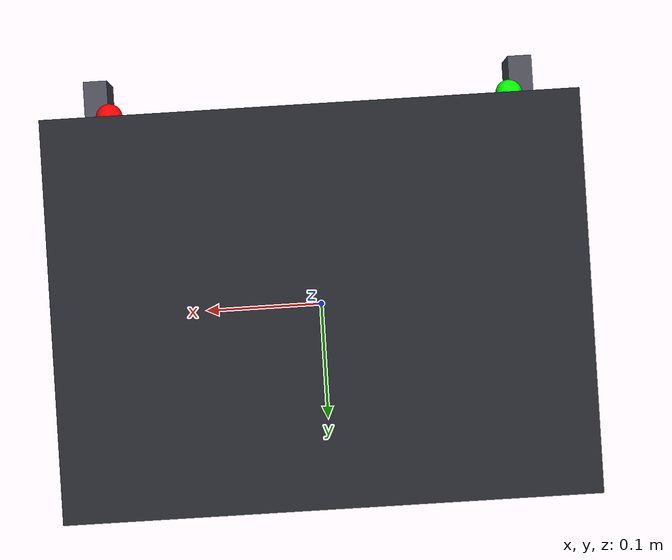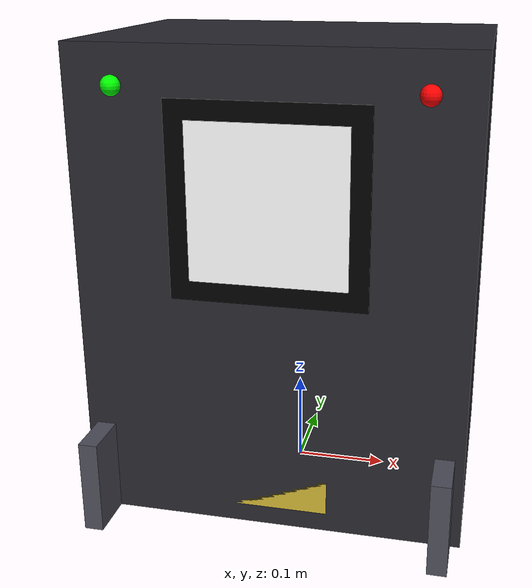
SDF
<?xml version="1.0" ?>
<!-- SPDX-License-Identifier: Apache-2.0 -->
<sdf version="1.9">
  <model name="charging_dock">
    <static>true</static>

    <!-- Dock body -->
    <link name="dock_body">
      <pose>0 0 0.25 0 0 0</pose>
      <collision name="collision">
        <geometry><box><size>0.4 0.3 0.5</size></box></geometry>
      </collision>
      <visual name="body_visual">
        <geometry><box><size>0.4 0.3 0.5</size></box></geometry>
        <material>
          <ambient>0.15 0.15 0.18 1</ambient>
          <diffuse>0.15 0.15 0.18 1</diffuse>
          <specular>0.3 0.3 0.3 1</specular>
        </material>
      </visual>
    </link>

    <!-- AprilTag marker face (front-facing, z=0.35m height) -->
    <link name="apriltag_marker">
      <pose>0 -0.151 0.35 0 0 0</pose>
      <visual name="tag_visual">
        <geometry><box><size>0.16 0.001 0.16</size></box></geometry>
        <material>
          <ambient>1.0 1.0 1.0 1</ambient>
          <diffuse>1.0 1.0 1.0 1</diffuse>
        </material>
      </visual>
    </link>

    <!-- AprilTag black border (slightly larger) -->
    <link name="apriltag_border">
      <pose>0 -0.1505 0.35 0 0 0</pose>
      <visual name="border_visual">
        <geometry><box><size>0.20 0.001 0.20</size></box></geometry>
        <material>
          <ambient>0.0 0.0 0.0 1</ambient>
          <diffuse>0.0 0.0 0.0 1</diffuse>
        </material>
      </visual>
    </link>

    <!-- Pogo pin contact plate (bottom front) -->
    <link name="contact_plate">
      <pose>0 -0.14 0.06 0 0 0</pose>
      <collision name="collision">
        <geometry><box><size>0.12 0.02 0.08</size></box></geometry>
      </collision>
      <visual name="contact_visual">
        <geometry><box><size>0.12 0.02 0.08</size></box></geometry>
        <material>
          <ambient>0.8 0.7 0.2 1</ambient>
          <diffuse>0.8 0.7 0.2 1</diffuse>
          <specular>0.9 0.9 0.5 1</specular>
        </material>
      </visual>
    </link>

    <!-- LED indicator left (green) -->
    <link name="led_green">
      <pose>-0.15 -0.151 0.46 0 0 0</pose>
      <visual name="led_visual">
        <geometry><sphere><radius>0.01</radius></sphere></geometry>
        <material>
          <ambient>0.0 0.8 0.0 1</ambient>
          <diffuse>0.0 1.0 0.0 1</diffuse>
          <emissive>0.0 0.6 0.0 1</emissive>
        </material>
      </visual>
    </link>

    <!-- LED indicator right (red) -->
    <link name="led_red">
      <pose>0.15 -0.151 0.46 0 0 0</pose>
      <visual name="led_visual">
        <geometry><sphere><radius>0.01</radius></sphere></geometry>
        <material>
          <ambient>0.8 0.0 0.0 1</ambient>
          <diffuse>1.0 0.0 0.0 1</diffuse>
          <emissive>0.6 0.0 0.0 1</emissive>
        </material>
      </visual>
    </link>

    <!-- Guide rails for alignment -->
    <link name="guide_left">
      <pose>-0.18 -0.10 0.05 0 0 0</pose>
      <collision name="collision">
        <geometry><box><size>0.02 0.20 0.10</size></box></geometry>
      </collision>
      <visual name="visual">
        <geometry><box><size>0.02 0.20 0.10</size></box></geometry>
        <material>
          <ambient>0.3 0.3 0.35 1</ambient>
          <diffuse>0.3 0.3 0.35 1</diffuse>
        </material>
      </visual>
    </link>

    <link name="guide_right">
      <pose>0.18 -0.10 0.05 0 0 0</pose>
      <collision name="collision">
        <geometry><box><size>0.02 0.20 0.10</size></box></geometry>
      </collision>
      <visual name="visual">
        <geometry><box><size>0.02 0.20 0.10</size></box></geometry>
        <material>
          <ambient>0.3 0.3 0.35 1</ambient>
          <diffuse>0.3 0.3 0.35 1</diffuse>
        </material>
      </visual>
    </link>

    <!-- Fixed joints to connect all links -->
    <joint name="tag_joint" type="fixed">
      <parent>dock_body</parent>
      <child>apriltag_marker</child>
    </joint>
    <joint name="border_joint" type="fixed">
      <parent>dock_body</parent>
      <child>apriltag_border</child>
    </joint>
    <joint name="contact_joint" type="fixed">
      <parent>dock_body</parent>
      <child>contact_plate</child>
    </joint>
    <joint name="led_green_joint" type="fixed">
      <parent>dock_body</parent>
      <child>led_green</child>
    </joint>
    <joint name="led_red_joint" type="fixed">
      <parent>dock_body</parent>
      <child>led_red</child>
    </joint>
    <joint name="guide_left_joint" type="fixed">
      <parent>dock_body</parent>
      <child>guide_left</child>
    </joint>
    <joint name="guide_right_joint" type="fixed">
      <parent>dock_body</parent>
      <child>guide_right</child>
    </joint>
  </model>
</sdf>
